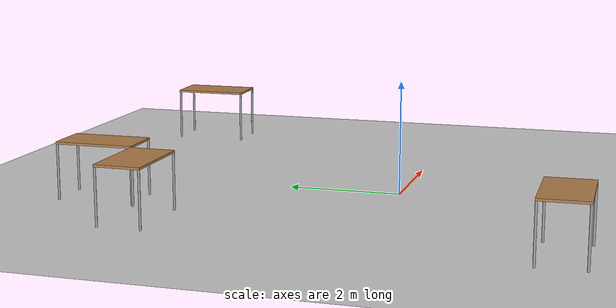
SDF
<sdf version="1.6">
 <world name="default">
  <light name="sun" type="directional">
   <pose>0 0 10 0 -0 0</pose>
   <diffuse>0.8 0.8 0.8 1</diffuse>
   <specular>0.1 0.1 0.1 1</specular>
   <attenuation>
    <range>1000</range>
    <constant>0.9</constant>
    <linear>0.01</linear>
    <quadratic>0.001</quadratic>
   </attenuation>
   <direction>-0.5 0.5 -1</direction>
  </light>
  <model name="ground_plane">
   <static>1</static>
   <link name="link">
    <collision name="collision">
     <geometry><plane><normal>0 0 1</normal><size>100 100</size></plane></geometry>
     <surface><friction><ode><mu>100</mu><mu2>50</mu2></ode></friction></surface>
    </collision>
    <visual name="visual">
     <cast_shadows>0</cast_shadows>
     <geometry><plane><normal>0 0 1</normal><size>100 100</size></plane></geometry>
     <material>
      <script><uri>file://media/materials/scripts/gazebo.material</uri><name>Gazebo/Grey</name></script>
     </material>
    </visual>
   </link>
  </model>
  <gravity>0 0 -9.8</gravity>
  <magnetic_field>6e-06 2.3e-05 -4.2e-05</magnetic_field>
  <atmosphere type="adiabatic"/>
  <physics name="default_physics" default="0" type="ode">
   <max_step_size>0.001</max_step_size>
   <real_time_factor>1</real_time_factor>
   <real_time_update_rate>1000</real_time_update_rate>
  </physics>
  <scene><ambient>0.4 0.4 0.4 1</ambient><background>0.7 0.7 0.7 1</background><shadows>1</shadows></scene>
  <spherical_coordinates>
   <surface_model>EARTH_WGS84</surface_model>
   <latitude_deg>0</latitude_deg>
   <longitude_deg>0</longitude_deg>
   <elevation>0</elevation>
   <heading_deg>0</heading_deg>
  </spherical_coordinates>
  <model name="table">
   <static>0</static>
   <link name="link">
    <collision name="surface">
     <pose>0 0 1 0 -0 0</pose>
     <geometry><box><size>1.5 0.8 0.03</size></box></geometry>
     <surface><friction><ode><mu>0.6</mu><mu2>0.6</mu2></ode></friction></surface>
    </collision>
    <visual name="visual1">
     <pose>0 0 1 0 -0 0</pose>
     <geometry><box><size>1.4 0.8 0.04</size></box></geometry>
     <material>
      <script><uri>file://media/materials/scripts/gazebo.material</uri><name>Gazebo/Wood</name></script>
     </material>
    </visual>
    <collision name="front_left_leg">
     <pose>0.68 0.38 0.5 0 -0 0</pose>
     <geometry><cylinder><radius>0.02</radius><length>1</length></cylinder></geometry>
    </collision>
    <visual name="front_left_leg">
     <pose>0.68 0.38 0.5 0 -0 0</pose>
     <geometry><cylinder><radius>0.02</radius><length>1</length></cylinder></geometry>
     <material>
      <script><uri>file://media/materials/scripts/gazebo.material</uri><name>Gazebo/Grey</name></script>
     </material>
    </visual>
    <collision name="front_right_leg">
     <pose>0.68 -0.38 0.5 0 -0 0</pose>
     <geometry><cylinder><radius>0.02</radius><length>1</length></cylinder></geometry>
    </collision>
    <visual name="front_right_leg">
     <pose>0.68 -0.38 0.5 0 -0 0</pose>
     <geometry><cylinder><radius>0.02</radius><length>1</length></cylinder></geometry>
     <material>
      <script><uri>file://media/materials/scripts/gazebo.material</uri><name>Gazebo/Grey</name></script>
     </material>
    </visual>
    <collision name="back_right_leg">
     <pose>-0.68 -0.38 0.5 0 -0 0</pose>
     <geometry><cylinder><radius>0.02</radius><length>1</length></cylinder></geometry>
    </collision>
    <visual name="back_right_leg">
     <pose>-0.68 -0.38 0.5 0 -0 0</pose>
     <geometry><cylinder><radius>0.02</radius><length>1</length></cylinder></geometry>
     <material>
      <script><uri>file://media/materials/scripts/gazebo.material</uri><name>Gazebo/Grey</name></script>
     </material>
    </visual>
    <collision name="back_left_leg">
     <pose>-0.68 0.38 0.5 0 -0 0</pose>
     <geometry><cylinder><radius>0.02</radius><length>1</length></cylinder></geometry>
    </collision>
    <visual name="back_left_leg">
     <pose>-0.68 0.38 0.5 0 -0 0</pose>
     <geometry><cylinder><radius>0.02</radius><length>1</length></cylinder></geometry>
     <material>
      <script><uri>file://media/materials/scripts/gazebo.material</uri><name>Gazebo/Grey</name></script>
     </material>
    </visual>
    <inertial>
     <inertia><ixx>1</ixx><ixy>0</ixy><ixz>0</ixz><iyy>1</iyy><iyz>0</iyz><izz>1</izz></inertia>
     <mass>1</mass>
    </inertial>
   </link>
   <pose>4.17704 5.01502 -1e-06 0 1e-06 -1.5621</pose>
  </model>
  <model name="table_clone">
   <static>0</static>
   <link name="link">
    <collision name="surface">
     <pose>0 0 1 0 -0 0</pose>
     <geometry><box><size>1.5 0.8 0.03</size></box></geometry>
     <surface><friction><ode><mu>0.6</mu><mu2>0.6</mu2></ode></friction></surface>
    </collision>
    <visual name="visual1">
     <pose>0 0 1 0 -0 0</pose>
     <geometry><box><size>1.4 0.8 0.04</size></box></geometry>
     <material>
      <script><uri>file://media/materials/scripts/gazebo.material</uri><name>Gazebo/Wood</name></script>
     </material>
    </visual>
    <collision name="front_left_leg">
     <pose>0.68 0.38 0.5 0 -0 0</pose>
     <geometry><cylinder><radius>0.02</radius><length>1</length></cylinder></geometry>
    </collision>
    <visual name="front_left_leg">
     <pose>0.68 0.38 0.5 0 -0 0</pose>
     <geometry><cylinder><radius>0.02</radius><length>1</length></cylinder></geometry>
     <material>
      <script><uri>file://media/materials/scripts/gazebo.material</uri><name>Gazebo/Grey</name></script>
     </material>
    </visual>
    <collision name="front_right_leg">
     <pose>0.68 -0.38 0.5 0 -0 0</pose>
     <geometry><cylinder><radius>0.02</radius><length>1</length></cylinder></geometry>
    </collision>
    <visual name="front_right_leg">
     <pose>0.68 -0.38 0.5 0 -0 0</pose>
     <geometry><cylinder><radius>0.02</radius><length>1</length></cylinder></geometry>
     <material>
      <script><uri>file://media/materials/scripts/gazebo.material</uri><name>Gazebo/Grey</name></script>
     </material>
    </visual>
    <collision name="back_right_leg">
     <pose>-0.68 -0.38 0.5 0 -0 0</pose>
     <geometry><cylinder><radius>0.02</radius><length>1</length></cylinder></geometry>
    </collision>
    <visual name="back_right_leg">
     <pose>-0.68 -0.38 0.5 0 -0 0</pose>
     <geometry><cylinder><radius>0.02</radius><length>1</length></cylinder></geometry>
     <material>
      <script><uri>file://media/materials/scripts/gazebo.material</uri><name>Gazebo/Grey</name></script>
     </material>
    </visual>
    <collision name="back_left_leg">
     <pose>-0.68 0.38 0.5 0 -0 0</pose>
     <geometry><cylinder><radius>0.02</radius><length>1</length></cylinder></geometry>
    </collision>
    <visual name="back_left_leg">
     <pose>-0.68 0.38 0.5 0 -0 0</pose>
     <geometry><cylinder><radius>0.02</radius><length>1</length></cylinder></geometry>
     <material>
      <script><uri>file://media/materials/scripts/gazebo.material</uri><name>Gazebo/Grey</name></script>
     </material>
    </visual>
    <inertial>
     <inertia><ixx>1</ixx><ixy>0</ixy><ixz>0</ixz><iyy>1</iyy><iyz>0</iyz><izz>1</izz></inertia>
     <mass>1</mass>
    </inertial>
   </link>
   <pose>-2.81797 3.75954 -8e-06 1e-06 -0 -0.007397</pose>
  </model>
  <model name="table_clone_0">
   <static>0</static>
   <link name="link">
    <collision name="surface">
     <pose>0 0 1 0 -0 0</pose>
     <geometry><box><size>1.5 0.8 0.03</size></box></geometry>
     <surface><friction><ode><mu>0.6</mu><mu2>0.6</mu2></ode></friction></surface>
    </collision>
    <visual name="visual1">
     <pose>0 0 1 0 -0 0</pose>
     <geometry><box><size>1.4 0.8 0.04</size></box></geometry>
     <material>
      <script><uri>file://media/materials/scripts/gazebo.material</uri><name>Gazebo/Wood</name></script>
     </material>
    </visual>
    <collision name="front_left_leg">
     <pose>0.68 0.38 0.5 0 -0 0</pose>
     <geometry><cylinder><radius>0.02</radius><length>1</length></cylinder></geometry>
    </collision>
    <visual name="front_left_leg">
     <pose>0.68 0.38 0.5 0 -0 0</pose>
     <geometry><cylinder><radius>0.02</radius><length>1</length></cylinder></geometry>
     <material>
      <script><uri>file://media/materials/scripts/gazebo.material</uri><name>Gazebo/Grey</name></script>
     </material>
    </visual>
    <collision name="front_right_leg">
     <pose>0.68 -0.38 0.5 0 -0 0</pose>
     <geometry><cylinder><radius>0.02</radius><length>1</length></cylinder></geometry>
    </collision>
    <visual name="front_right_leg">
     <pose>0.68 -0.38 0.5 0 -0 0</pose>
     <geometry><cylinder><radius>0.02</radius><length>1</length></cylinder></geometry>
     <material>
      <script><uri>file://media/materials/scripts/gazebo.material</uri><name>Gazebo/Grey</name></script>
     </material>
    </visual>
    <collision name="back_right_leg">
     <pose>-0.68 -0.38 0.5 0 -0 0</pose>
     <geometry><cylinder><radius>0.02</radius><length>1</length></cylinder></geometry>
    </collision>
    <visual name="back_right_leg">
     <pose>-0.68 -0.38 0.5 0 -0 0</pose>
     <geometry><cylinder><radius>0.02</radius><length>1</length></cylinder></geometry>
     <material>
      <script><uri>file://media/materials/scripts/gazebo.material</uri><name>Gazebo/Grey</name></script>
     </material>
    </visual>
    <collision name="back_left_leg">
     <pose>-0.68 0.38 0.5 0 -0 0</pose>
     <geometry><cylinder><radius>0.02</radius><length>1</length></cylinder></geometry>
    </collision>
    <visual name="back_left_leg">
     <pose>-0.68 0.38 0.5 0 -0 0</pose>
     <geometry><cylinder><radius>0.02</radius><length>1</length></cylinder></geometry>
     <material>
      <script><uri>file://media/materials/scripts/gazebo.material</uri><name>Gazebo/Grey</name></script>
     </material>
    </visual>
    <inertial>
     <inertia><ixx>1</ixx><ixy>0</ixy><ixz>0</ixz><iyy>1</iyy><iyz>0</iyz><izz>1</izz></inertia>
     <mass>1</mass>
    </inertial>
   </link>
   <pose>-1.65481 4.8883 -1e-06 0 1e-06 -1.5621</pose>
  </model>
  <model name="table_clone_1">
   <static>0</static>
   <link name="link">
    <collision name="surface">
     <pose>0 0 1 0 -0 0</pose>
     <geometry><box><size>1.5 0.8 0.03</size></box></geometry>
     <surface><friction><ode><mu>0.6</mu><mu2>0.6</mu2></ode></friction></surface>
    </collision>
    <visual name="visual1">
     <pose>0 0 1 0 -0 0</pose>
     <geometry><box><size>1.4 0.8 0.04</size></box></geometry>
     <material>
      <script><uri>file://media/materials/scripts/gazebo.material</uri><name>Gazebo/Wood</name></script>
     </material>
    </visual>
    <collision name="front_left_leg">
     <pose>0.68 0.38 0.5 0 -0 0</pose>
     <geometry><cylinder><radius>0.02</radius><length>1</length></cylinder></geometry>
    </collision>
    <visual name="front_left_leg">
     <pose>0.68 0.38 0.5 0 -0 0</pose>
     <geometry><cylinder><radius>0.02</radius><length>1</length></cylinder></geometry>
     <material>
      <script><uri>file://media/materials/scripts/gazebo.material</uri><name>Gazebo/Grey</name></script>
     </material>
    </visual>
    <collision name="front_right_leg">
     <pose>0.68 -0.38 0.5 0 -0 0</pose>
     <geometry><cylinder><radius>0.02</radius><length>1</length></cylinder></geometry>
    </collision>
    <visual name="front_right_leg">
     <pose>0.68 -0.38 0.5 0 -0 0</pose>
     <geometry><cylinder><radius>0.02</radius><length>1</length></cylinder></geometry>
     <material>
      <script><uri>file://media/materials/scripts/gazebo.material</uri><name>Gazebo/Grey</name></script>
     </material>
    </visual>
    <collision name="back_right_leg">
     <pose>-0.68 -0.38 0.5 0 -0 0</pose>
     <geometry><cylinder><radius>0.02</radius><length>1</length></cylinder></geometry>
    </collision>
    <visual name="back_right_leg">
     <pose>-0.68 -0.38 0.5 0 -0 0</pose>
     <geometry><cylinder><radius>0.02</radius><length>1</length></cylinder></geometry>
     <material>
      <script><uri>file://media/materials/scripts/gazebo.material</uri><name>Gazebo/Grey</name></script>
     </material>
    </visual>
    <collision name="back_left_leg">
     <pose>-0.68 0.38 0.5 0 -0 0</pose>
     <geometry><cylinder><radius>0.02</radius><length>1</length></cylinder></geometry>
    </collision>
    <visual name="back_left_leg">
     <pose>-0.68 0.38 0.5 0 -0 0</pose>
     <geometry><cylinder><radius>0.02</radius><length>1</length></cylinder></geometry>
     <material>
      <script><uri>file://media/materials/scripts/gazebo.material</uri><name>Gazebo/Grey</name></script>
     </material>
    </visual>
    <inertial>
     <inertia><ixx>1</ixx><ixy>0</ixy><ixz>0</ixz><iyy>1</iyy><iyz>0</iyz><izz>1</izz></inertia>
     <mass>1</mass>
    </inertial>
   </link>
   <pose>-3.0028 -3.14117 0 1e-06 -0 -3.12176</pose>
  </model>
 </world>
</sdf>
